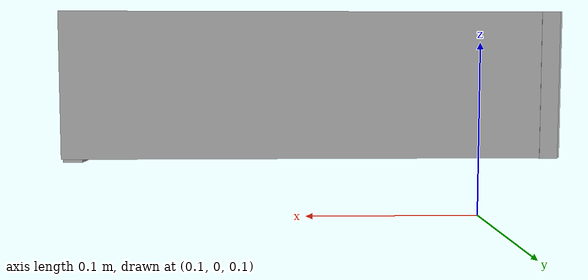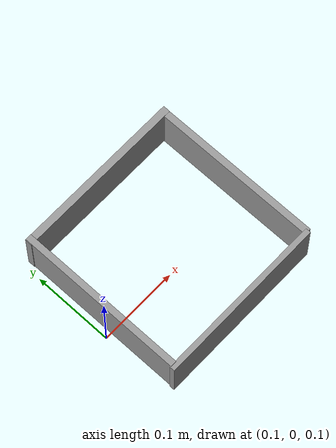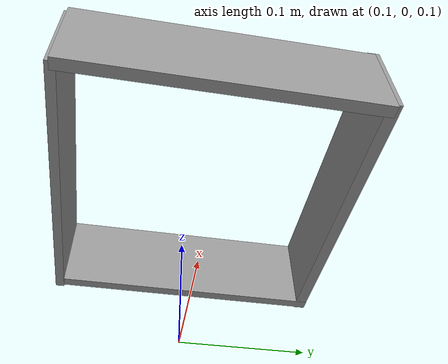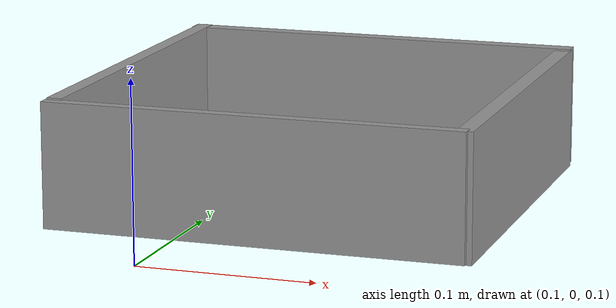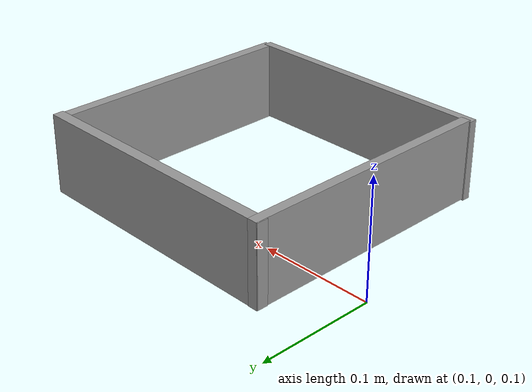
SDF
<?xml version='1.0'?>
<sdf version='1.6'>
  <model name='bbox'>
    <link name='link'>
      <inertial>
        <mass>0.000360326</mass>
        <inertia>
          <ixx>1.1838e-07</ixx>
          <ixy>0</ixy>
          <ixz>0</ixz>
          <iyy>1.42653e-06</iyy>
          <iyz>0</iyz>
          <izz>1.31074e-06</izz>
        </inertia>
        <pose frame=''>0 0 0 0 -0 0</pose>
      </inertial>
      <self_collide>0</self_collide>
      <enable_wind>0</enable_wind>
      <kinematic>0</kinematic>
      <pose frame=''>0.200727 -0.099703 0.177148 0 -0 0</pose>
      <visual name='visual'>
        <geometry>
          <box>
            <size>0.208827 0.006561 0.062445</size>
          </box>
        </geometry>
        <material>
          <script>
            <name>Gazebo/Grey</name>
            <uri>file://media/materials/scripts/gazebo.material</uri>
          </script>
          <emissive>0 0 0 1</emissive>
          <shader type='pixel'/>
        </material>
        <pose frame=''>0 0 0 0 -0 0</pose>
        <transparency>0</transparency>
        <cast_shadows>1</cast_shadows>
      </visual>
      <collision name='collision'>
        <laser_retro>0</laser_retro>
        <max_contacts>10</max_contacts>
        <pose frame=''>0 0 0 0 -0 0</pose>
        <geometry>
          <box>
            <size>0.208827 0.006561 0.062445</size>
          </box>
        </geometry>
        <surface>
          <friction>
            <ode>
              <mu>1</mu>
              <mu2>1</mu2>
              <fdir1>0 0 0</fdir1>
              <slip1>0</slip1>
              <slip2>0</slip2>
            </ode>
            <torsional>
              <coefficient>1</coefficient>
              <patch_radius>0</patch_radius>
              <surface_radius>0</surface_radius>
              <use_patch_radius>1</use_patch_radius>
              <ode>
                <slip>0</slip>
              </ode>
            </torsional>
          </friction>
          <bounce>
            <restitution_coefficient>0</restitution_coefficient>
            <threshold>1e+06</threshold>
          </bounce>
          <contact>
            <collide_without_contact>0</collide_without_contact>
            <collide_without_contact_bitmask>1</collide_without_contact_bitmask>
            <collide_bitmask>1</collide_bitmask>
            <ode>
              <soft_cfm>0</soft_cfm>
              <soft_erp>0.2</soft_erp>
              <kp>1e+13</kp>
              <kd>1</kd>
              <max_vel>0.01</max_vel>
              <min_depth>0</min_depth>
            </ode>
            <bullet>
              <split_impulse>1</split_impulse>
              <split_impulse_penetration_threshold>-0.01</split_impulse_penetration_threshold>
              <soft_cfm>0</soft_cfm>
              <soft_erp>0.2</soft_erp>
              <kp>1e+13</kp>
              <kd>1</kd>
            </bullet>
          </contact>
        </surface>
      </collision>
    </link>
    <link name='link_clone'>
      <inertial>
        <mass>0.000483234</mass>
        <inertia>
          <ixx>1.58017e-07</ixx>
          <ixy>0</ixy>
          <ixz>0</ixz>
          <iyy>1.95073e-06</iyy>
          <iyz>0</iyz>
          <izz>1.79888e-06</izz>
        </inertia>
        <pose frame=''>0 0 0 0 -0 0</pose>
      </inertial>
      <self_collide>0</self_collide>
      <enable_wind>0</enable_wind>
      <kinematic>0</kinematic>
      <pose frame=''>0.200752 0.104095 0.178106 -1e-05 -0 -0.000119</pose>
      <visual name='visual'>
        <geometry>
          <box>
            <size>0.211174 0.008749 0.062028</size>
          </box>
        </geometry>
        <material>
          <script>
            <name>Gazebo/Grey</name>
            <uri>file://media/materials/scripts/gazebo.material</uri>
          </script>
          <shader type='pixel'/>
          <emissive>0 0 0 1</emissive>
        </material>
        <pose frame=''>0 0 0 0 -0 0</pose>
        <transparency>0</transparency>
        <cast_shadows>1</cast_shadows>
      </visual>
      <collision name='collision'>
        <laser_retro>0</laser_retro>
        <max_contacts>10</max_contacts>
        <pose frame=''>0 0 0 0 -0 0</pose>
        <geometry>
          <box>
            <size>0.211174 0.008749 0.062028</size>
          </box>
        </geometry>
        <surface>
          <friction>
            <ode>
              <mu>1</mu>
              <mu2>1</mu2>
              <fdir1>0 0 0</fdir1>
              <slip1>0</slip1>
              <slip2>0</slip2>
            </ode>
            <torsional>
              <coefficient>1</coefficient>
              <patch_radius>0</patch_radius>
              <surface_radius>0</surface_radius>
              <use_patch_radius>1</use_patch_radius>
              <ode>
                <slip>0</slip>
              </ode>
            </torsional>
          </friction>
          <bounce>
            <restitution_coefficient>0</restitution_coefficient>
            <threshold>1e+06</threshold>
          </bounce>
          <contact>
            <collide_without_contact>0</collide_without_contact>
            <collide_without_contact_bitmask>1</collide_without_contact_bitmask>
            <collide_bitmask>1</collide_bitmask>
            <ode>
              <soft_cfm>0</soft_cfm>
              <soft_erp>0.2</soft_erp>
              <kp>1e+13</kp>
              <kd>1</kd>
              <max_vel>0.01</max_vel>
              <min_depth>0</min_depth>
            </ode>
            <bullet>
              <split_impulse>1</split_impulse>
              <split_impulse_penetration_threshold>-0.01</split_impulse_penetration_threshold>
              <soft_cfm>0</soft_cfm>
              <soft_erp>0.2</soft_erp>
              <kp>1e+13</kp>
              <kd>1</kd>
            </bullet>
          </contact>
        </surface>
      </collision>
    </link>
    <link name='link_clone_0'>
      <inertial>
        <mass>0.000453388</mass>
        <inertia>
          <ixx>1.51358e-07</ixx>
          <ixy>0</ixy>
          <ixz>0</ixz>
          <iyy>1.74868e-06</iyy>
          <iyz>0</iyz>
          <izz>1.60253e-06</izz>
        </inertia>
        <pose frame=''>0 0 0 0 -0 0</pose>
      </inertial>
      <self_collide>0</self_collide>
      <enable_wind>0</enable_wind>
      <kinematic>0</kinematic>
      <pose frame=''>0.302983 0.002553 0.176771 0 -1e-05 -1.56405</pose>
      <visual name='visual'>
        <geometry>
          <box>
            <size>0.205781 0.008304 0.062746</size>
          </box>
        </geometry>
        <material>
          <script>
            <name>Gazebo/Grey</name>
            <uri>file://media/materials/scripts/gazebo.material</uri>
          </script>
          <shader type='pixel'/>
          <emissive>0 0 0 1</emissive>
        </material>
        <pose frame=''>0 0 0 0 -0 0</pose>
        <transparency>0</transparency>
        <cast_shadows>1</cast_shadows>
      </visual>
      <collision name='collision'>
        <laser_retro>0</laser_retro>
        <max_contacts>10</max_contacts>
        <pose frame=''>0 0 0 0 -0 0</pose>
        <geometry>
          <box>
            <size>0.205781 0.008304 0.062746</size>
          </box>
        </geometry>
        <surface>
          <friction>
            <ode>
              <mu>1</mu>
              <mu2>1</mu2>
              <fdir1>0 0 0</fdir1>
              <slip1>0</slip1>
              <slip2>0</slip2>
            </ode>
            <torsional>
              <coefficient>1</coefficient>
              <patch_radius>0</patch_radius>
              <surface_radius>0</surface_radius>
              <use_patch_radius>1</use_patch_radius>
              <ode>
                <slip>0</slip>
              </ode>
            </torsional>
          </friction>
          <bounce>
            <restitution_coefficient>0</restitution_coefficient>
            <threshold>1e+06</threshold>
          </bounce>
          <contact>
            <collide_without_contact>0</collide_without_contact>
            <collide_without_contact_bitmask>1</collide_without_contact_bitmask>
            <collide_bitmask>1</collide_bitmask>
            <ode>
              <soft_cfm>0</soft_cfm>
              <soft_erp>0.2</soft_erp>
              <kp>1e+13</kp>
              <kd>1</kd>
              <max_vel>0.01</max_vel>
              <min_depth>0</min_depth>
            </ode>
            <bullet>
              <split_impulse>1</split_impulse>
              <split_impulse_penetration_threshold>-0.01</split_impulse_penetration_threshold>
              <soft_cfm>0</soft_cfm>
              <soft_erp>0.2</soft_erp>
              <kp>1e+13</kp>
              <kd>1</kd>
            </bullet>
          </contact>
        </surface>
      </collision>
    </link>
    <link name='link_clone_0_clone'>
      <inertial>
        <mass>0.000421107</mass>
        <inertia>
          <ixx>1.38824e-07</ixx>
          <ixy>0</ixy>
          <ixz>0</ixz>
          <iyy>1.62844e-06</iyy>
          <iyz>0</iyz>
          <izz>1.49377e-06</izz>
        </inertia>
        <pose frame=''>0 0 0 0 -0 0</pose>
      </inertial>
      <self_collide>0</self_collide>
      <enable_wind>0</enable_wind>
      <kinematic>0</kinematic>
      <pose frame=''>0.100423 0.005505 0.178062 -0 -2e-05 -1.56415</pose>
      <visual name='visual'>
        <geometry>
          <box>
            <size>0.206174 0.007696 0.062424</size>
          </box>
        </geometry>
        <material>
          <script>
            <name>Gazebo/Grey</name>
            <uri>file://media/materials/scripts/gazebo.material</uri>
          </script>
          <shader type='pixel'/>
          <emissive>0 0 0 1</emissive>
        </material>
        <pose frame=''>0 0 0 0 -0 0</pose>
        <transparency>0</transparency>
        <cast_shadows>1</cast_shadows>
      </visual>
      <collision name='collision'>
        <laser_retro>0</laser_retro>
        <max_contacts>10</max_contacts>
        <pose frame=''>0 0 0 0 -0 0</pose>
        <geometry>
          <box>
            <size>0.206174 0.007696 0.062424</size>
          </box>
        </geometry>
        <surface>
          <friction>
            <ode>
              <mu>1</mu>
              <mu2>1</mu2>
              <fdir1>0 0 0</fdir1>
              <slip1>0</slip1>
              <slip2>0</slip2>
            </ode>
            <torsional>
              <coefficient>1</coefficient>
              <patch_radius>0</patch_radius>
              <surface_radius>0</surface_radius>
              <use_patch_radius>1</use_patch_radius>
              <ode>
                <slip>0</slip>
              </ode>
            </torsional>
          </friction>
          <bounce>
            <restitution_coefficient>0</restitution_coefficient>
            <threshold>1e+06</threshold>
          </bounce>
          <contact>
            <collide_without_contact>0</collide_without_contact>
            <collide_without_contact_bitmask>1</collide_without_contact_bitmask>
            <collide_bitmask>1</collide_bitmask>
            <ode>
              <soft_cfm>0</soft_cfm>
              <soft_erp>0.2</soft_erp>
              <kp>1e+13</kp>
              <kd>1</kd>
              <max_vel>0.01</max_vel>
              <min_depth>0</min_depth>
            </ode>
            <bullet>
              <split_impulse>1</split_impulse>
              <split_impulse_penetration_threshold>-0.01</split_impulse_penetration_threshold>
              <soft_cfm>0</soft_cfm>
              <soft_erp>0.2</soft_erp>
              <kp>1e+13</kp>
              <kd>1</kd>
            </bullet>
          </contact>
        </surface>
      </collision>
    </link>
    <joint name='link_JOINT_7' type='fixed'>
      <parent>link</parent>
      <child>link_clone_0</child>
      <pose frame=''>0 0 0 0 -0 0</pose>
      <physics>
        <ode>
          <limit>
            <cfm>0</cfm>
            <erp>0.2</erp>
          </limit>
          <suspension>
            <cfm>0</cfm>
            <erp>0.2</erp>
          </suspension>
        </ode>
      </physics>
    </joint>
    <joint name='link_clone_0_JOINT_8' type='fixed'>
      <parent>link_clone_0</parent>
      <child>link_clone</child>
      <pose frame=''>0 0 0 0 -0 0</pose>
      <physics>
        <ode>
          <limit>
            <cfm>0</cfm>
            <erp>0.2</erp>
          </limit>
          <suspension>
            <cfm>0</cfm>
            <erp>0.2</erp>
          </suspension>
        </ode>
      </physics>
    </joint>
    <joint name='link_clone_0_clone_JOINT_6' type='fixed'>
      <parent>link_clone_0_clone</parent>
      <child>link</child>
      <pose frame=''>0 0 0 0 -0 0</pose>
      <physics>
        <ode>
          <limit>
            <cfm>0</cfm>
            <erp>0.2</erp>
          </limit>
          <suspension>
            <cfm>0</cfm>
            <erp>0.2</erp>
          </suspension>
        </ode>
      </physics>
    </joint>
    <joint name='link_clone_JOINT_9' type='fixed'>
      <parent>link_clone</parent>
      <child>link_clone_0_clone</child>
      <pose frame=''>0 0 0 0 -0 0</pose>
      <physics>
        <ode>
          <limit>
            <cfm>0</cfm>
            <erp>0.2</erp>
          </limit>
          <suspension>
            <cfm>0</cfm>
            <erp>0.2</erp>
          </suspension>
        </ode>
      </physics>
    </joint>
    <static>1</static>
    <allow_auto_disable>1</allow_auto_disable>
  </model>
</sdf>
